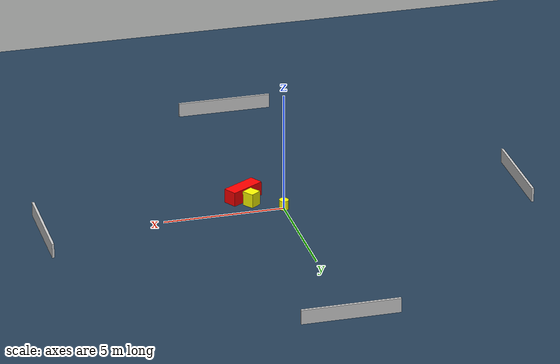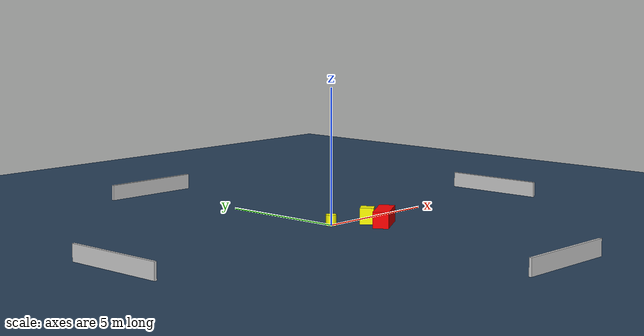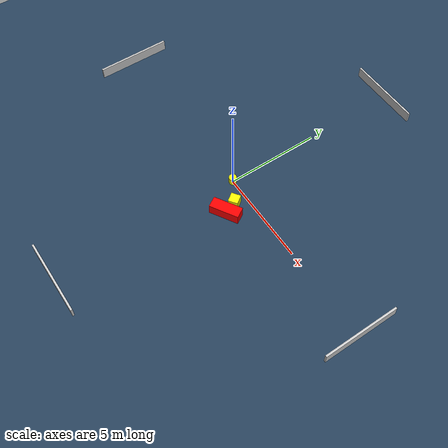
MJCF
<?xml version="1.0" ?>
<mujoco model="generated_environment">
  <option timestep="0.01" integrator="RK4" cone="elliptic"/>
  <default>
    <geom density="1"/>
  </default>
  <asset>
    <texture builtin="gradient" height="3072" name="skybox" rgb1="0.3 0.5 0.7" rgb2="0 0 0" type="skybox" width="512"/>
    <texture builtin="checker" height="300" name="groundplane" rgb1="0.2 0.3 0.4" rgb2="0.1 0.2 0.3" type="2d" width="300"/>
    <material name="groundplane" reflectance="0.2" texrepeat="5 5" texture="groundplane"/>
  </asset>
  <worldbody>
    <light dir="0 0 -1" directional="true" pos="0 0 1.5"/>
    <geom condim="3" friction="0.5 0.005 0.001" material="groundplane" name="floor" pos="0 0 0" size="0 0 0.05" type="plane"/>
    <body name="walls">
      <geom name="wall_1" condim="4" pos="-10.0 0.0 0.3" rgba="0.800000011920929 0.800000011920929 0.800000011920929 1.0" size="0.05 2.0 0.3" type="box"/>
      <geom name="wall_2" condim="4" pos="10.0 0.0 0.3" rgba="0.800000011920929 0.800000011920929 0.800000011920929 1.0" size="0.05 2.0 0.3" type="box"/>
      <geom name="wall_3" condim="4" pos="0.0 -10.0 0.3" rgba="0.800000011920929 0.800000011920929 0.800000011920929 1.0" size="2.0 0.05 0.3" type="box"/>
      <geom name="wall_4" condim="4" pos="0.0 10.0 0.3" rgba="0.800000011920929 0.800000011920929 0.800000011920929 1.0" size="2.0 0.05 0.3" type="box"/>
    </body>
    <body name="robot">
      <joint name="joint_x" type="slide" pos="0 0 0" axis="1 0 0"/>
      <joint name="joint_y" type="slide" pos="0 0 0" axis="0 1 0"/>
      <geom name="robot" type="cylinder" pos="0.0 0.0 0.2" size="0.2 0.2 0.0" mass="5.0" friction="1.0 0.005 0.0001" condim="4" rgba="1.0 1.0 0.0 1.0"/>
    </body>
    <body name="obstacle_1_movable">
      <geom name="obstacle_1_movable" condim="4" pos="1.1835574175446335 -0.7037346859820457 0.3" euler="0 0 125.82228599253928" friction="0.0 0.005 0.001" rgba="1.0 1.0 0.0 1.0" size="0.2528060940473982 0.2468731751502543 0.3" type="box" mass="0.1"/>
      <joint type="free"/>
    </body>
    <body name="obstacle_2_static">
      <geom name="obstacle_2_static" condim="4" pos="1.3755612509868331 -1.339281596370896 0.3" euler="0 0 30.835817774065994" friction="0.0 0.005 0.001" rgba="1.0 0.0 0.0 1.0" size="0.7726813551177842 0.2917462364541188 0.3" type="box"/>
    </body>
  </worldbody>
  <actuator>
    <motor name="actuator_x" joint="joint_x" gear="1" ctrlrange="-1 1"/>
    <motor name="actuator_y" joint="joint_y" gear="1" ctrlrange="-1 1"/>
  </actuator>
</mujoco>
